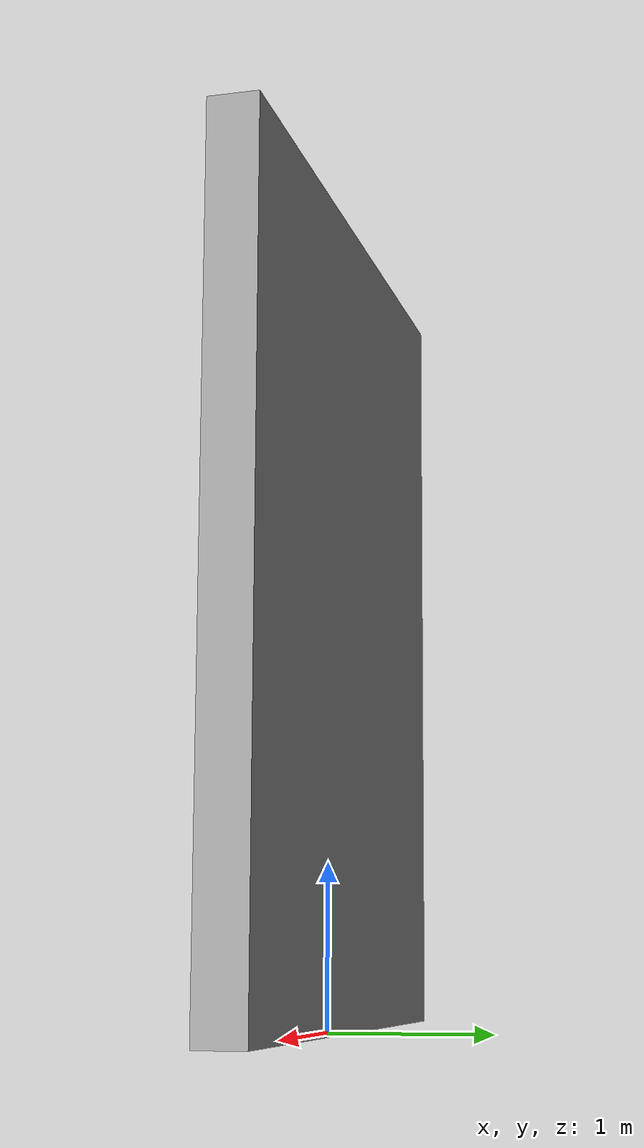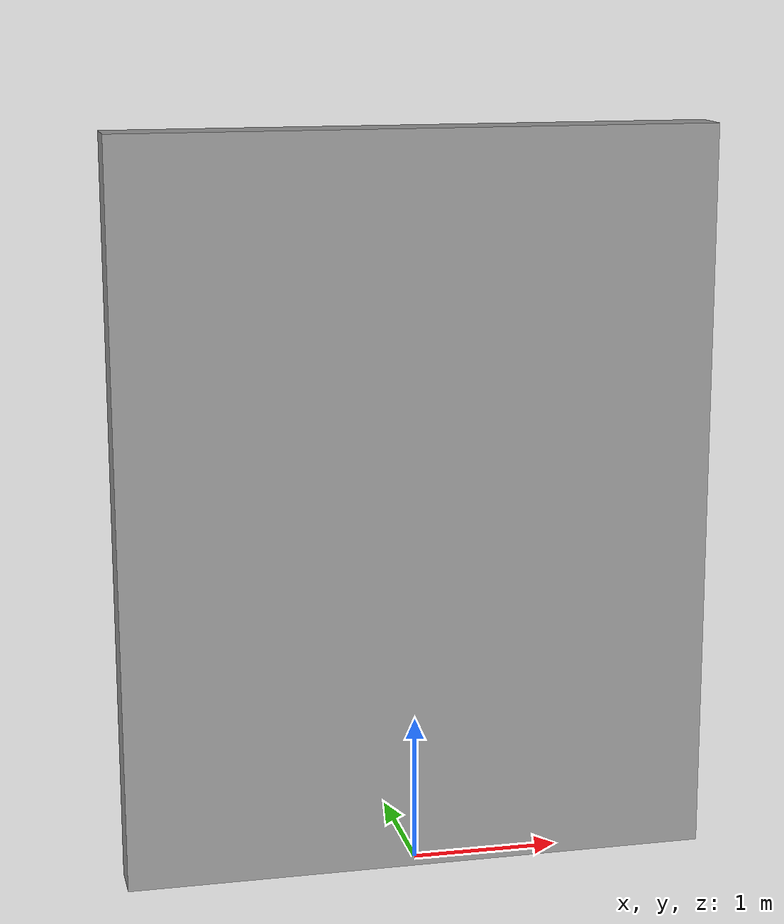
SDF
<?xml version="1.0"?>
<sdf version="1.10">
  <model name="wall_segment_tall">
    <static>true</static>
    <link name="link">
      <collision name="collision">
        <geometry>
          <box>
            <size>4.0 0.3 5.0</size>
          </box>
        </geometry>
      </collision>
      <visual name="visual">
        <geometry>
          <box>
            <size>4.0 0.3 5.0</size>
          </box>
        </geometry>
        <material>
          <ambient>0.5 0.5 0.5 1</ambient>
          <diffuse>0.6 0.6 0.6 1</diffuse>
          <specular>0.2 0.2 0.2 1</specular>
        </material>
      </visual>
      <pose>0 0 2.5 0 0 0</pose>
    </link>
  </model>
</sdf>
